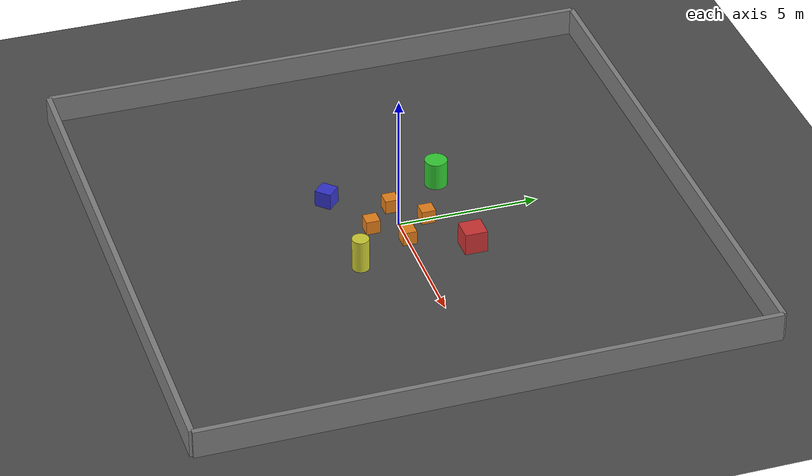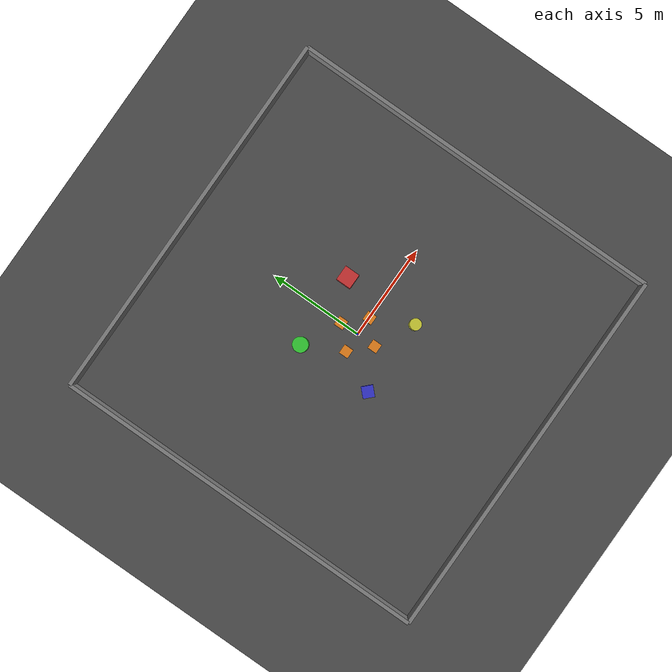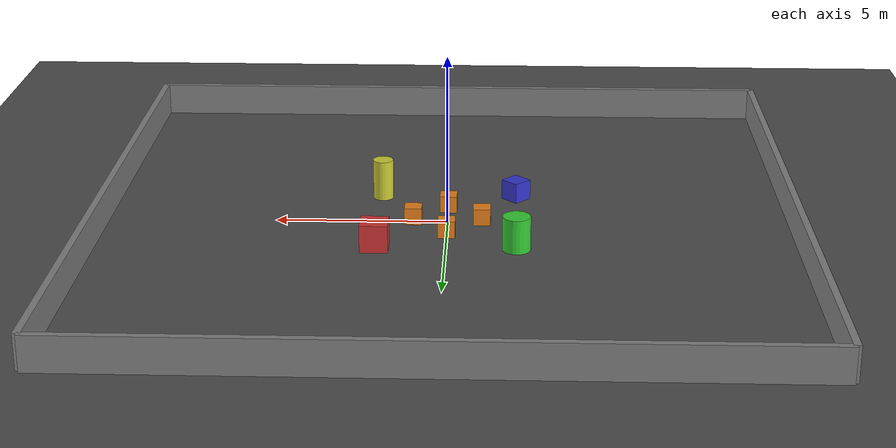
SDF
<?xml version="1.0"?>

<sdf version="1.7">
    <world name="obstacles_easy">
        <!-- Physics settings: 10ms step, 100Hz, real-time (RTF = 1) -->
        <physics name='realtime' type='ignored'>
            <max_step_size>0.01</max_step_size>
            <real_time_factor>1</real_time_factor>
            <real_time_update_rate>100</real_time_update_rate>
        </physics>
        <!-- Faster-than-real-time physics for speeding up training (RTF = 8).
             Comment out the 'realtime' block above and uncomment this to use it. -->

        <!-- Gazebo Harmonic plugins -->
        <plugin name='gz::sim::systems::Physics' filename='gz-sim-physics-system'/>
        <plugin name='gz::sim::systems::UserCommands' filename='gz-sim-user-commands-system'/>
        <plugin name='gz::sim::systems::SceneBroadcaster' filename='gz-sim-scene-broadcaster-system'/>
        <plugin filename='gz-sim-sensors-system' name='gz::sim::systems::Sensors'>
            <render_engine>ogre2</render_engine>
        </plugin>
        <plugin filename="gz-sim-imu-system" name="gz::sim::systems::Imu"/>
        <plugin filename="gz-sim-contact-system" name="gz::sim::systems::Contact"/>

        <scene>
            <ambient>1.0 1.0 1.0</ambient>
            <background>0.8 0.8 0.8</background>
        </scene>

        <!-- Sun -->
        <light type="directional" name="sun">
            <cast_shadows>true</cast_shadows>
            <pose>0 0 10 0 0 0</pose>
            <diffuse>0.8 0.8 0.8 1</diffuse>
            <specular>0.2 0.2 0.2 1</specular>
            <attenuation>
                <range>1000</range>
                <constant>0.9</constant>
                <linear>0.01</linear>
                <quadratic>0.001</quadratic>
            </attenuation>
            <direction>-0.5 0.1 -0.9</direction>
        </light>

        <!-- Ground plane with friction -->
        <model name="ground_plane">
            <static>true</static>
            <link name="link">
                <collision name="collision">
                    <geometry>
                        <plane>
                            <normal>0 0 1</normal>
                            <size>100 100</size>
                        </plane>
                    </geometry>
                    <surface>
                        <friction>
                            <ode>
                                <mu>0.8</mu>
                                <mu2>0.8</mu2>
                            </ode>
                        </friction>
                    </surface>
                </collision>
                <visual name="visual">
                    <geometry>
                        <plane>
                            <normal>0 0 1</normal>
                            <size>100 100</size>
                        </plane>
                    </geometry>
                    <material>
                        <ambient>0.3 0.3 0.3 1</ambient>
                        <diffuse>0.3 0.3 0.3 1</diffuse>
                        <specular>0.1 0.1 0.1 1</specular>
                    </material>
                </visual>
            </link>
        </model>

        <!-- BOUNDARY WALLS (20m x 20m arena) -->

        <!-- North wall -->
        <model name="wall_north">
            <static>true</static>
            <pose>0 10 0.5 0 0 0</pose>
            <link name="link">
                <collision name="collision">
                    <geometry>
                        <box><size>20 0.2 1</size></box>
                    </geometry>
                </collision>
                <visual name="visual">
                    <geometry>
                        <box><size>20 0.2 1</size></box>
                    </geometry>
                    <material>
                        <ambient>0.5 0.5 0.5 1</ambient>
                        <diffuse>0.5 0.5 0.5 1</diffuse>
                    </material>
                </visual>
            </link>
        </model>

        <!-- South wall -->
        <model name="wall_south">
            <static>true</static>
            <pose>0 -10 0.5 0 0 0</pose>
            <link name="link">
                <collision name="collision">
                    <geometry>
                        <box><size>20 0.2 1</size></box>
                    </geometry>
                </collision>
                <visual name="visual">
                    <geometry>
                        <box><size>20 0.2 1</size></box>
                    </geometry>
                    <material>
                        <ambient>0.5 0.5 0.5 1</ambient>
                        <diffuse>0.5 0.5 0.5 1</diffuse>
                    </material>
                </visual>
            </link>
        </model>

        <!-- East wall -->
        <model name="wall_east">
            <static>true</static>
            <pose>10 0 0.5 0 0 0</pose>
            <link name="link">
                <collision name="collision">
                    <geometry>
                        <box><size>0.2 20 1</size></box>
                    </geometry>
                </collision>
                <visual name="visual">
                    <geometry>
                        <box><size>0.2 20 1</size></box>
                    </geometry>
                    <material>
                        <ambient>0.5 0.5 0.5 1</ambient>
                        <diffuse>0.5 0.5 0.5 1</diffuse>
                    </material>
                </visual>
            </link>
        </model>

        <!-- West wall -->
        <model name="wall_west">
            <static>true</static>
            <pose>-10 0 0.5 0 0 0</pose>
            <link name="link">
                <collision name="collision">
                    <geometry>
                        <box><size>0.2 20 1</size></box>
                    </geometry>
                </collision>
                <visual name="visual">
                    <geometry>
                        <box><size>0.2 20 1</size></box>
                    </geometry>
                    <material>
                        <ambient>0.5 0.5 0.5 1</ambient>
                        <diffuse>0.5 0.5 0.5 1</diffuse>
                    </material>
                </visual>
            </link>
        </model>

        <!-- STATIC OBSTACLES (4 varied shapes) -->

        <!-- Static obstacle 1: Large box -->
        <model name="static_box_1">
            <static>true</static>
            <pose>2 2 0.4 0 0 0</pose>
            <link name="link">
                <collision name="collision">
                    <geometry>
                        <box><size>0.8 0.8 0.8</size></box>
                    </geometry>
                </collision>
                <visual name="visual">
                    <geometry>
                        <box><size>0.8 0.8 0.8</size></box>
                    </geometry>
                    <material>
                        <ambient>0.8 0.2 0.2 1</ambient>
                        <diffuse>0.8 0.2 0.2 1</diffuse>
                    </material>
                </visual>
            </link>
        </model>

        <!-- Static obstacle 2: Cylinder -->
        <model name="static_cylinder_1">
            <static>true</static>
            <pose>-2 2 0.5 0 0 0</pose>
            <link name="link">
                <collision name="collision">
                    <geometry>
                        <cylinder>
                            <radius>0.4</radius>
                            <length>1.0</length>
                        </cylinder>
                    </geometry>
                </collision>
                <visual name="visual">
                    <geometry>
                        <cylinder>
                            <radius>0.4</radius>
                            <length>1.0</length>
                        </cylinder>
                    </geometry>
                    <material>
                        <ambient>0.2 0.8 0.2 1</ambient>
                        <diffuse>0.2 0.8 0.2 1</diffuse>
                    </material>
                </visual>
            </link>
        </model>

        <!-- Static obstacle 3: Small box -->
        <model name="static_box_2">
            <static>true</static>
            <pose>-2 -2 0.3 0 0 0.785</pose>
            <link name="link">
                <collision name="collision">
                    <geometry>
                        <box><size>0.6 0.6 0.6</size></box>
                    </geometry>
                </collision>
                <visual name="visual">
                    <geometry>
                        <box><size>0.6 0.6 0.6</size></box>
                    </geometry>
                    <material>
                        <ambient>0.2 0.2 0.8 1</ambient>
                        <diffuse>0.2 0.2 0.8 1</diffuse>
                    </material>
                </visual>
            </link>
        </model>

        <!-- Static obstacle 4: Tall cylinder -->
        <model name="static_cylinder_2">
            <static>true</static>
            <pose>2 -2 0.6 0 0 0</pose>
            <link name="link">
                <collision name="collision">
                    <geometry>
                        <cylinder>
                            <radius>0.3</radius>
                            <length>1.2</length>
                        </cylinder>
                    </geometry>
                </collision>
                <visual name="visual">
                    <geometry>
                        <cylinder>
                            <radius>0.3</radius>
                            <length>1.2</length>
                        </cylinder>
                    </geometry>
                    <material>
                        <ambient>0.8 0.8 0.2 1</ambient>
                        <diffuse>0.8 0.8 0.2 1</diffuse>
                    </material>
                </visual>
            </link>
        </model>

        <!-- MOVABLE OBSTACLES (4 boxes for randomization) -->

        <!-- Movable box 1 -->
        <model name="movable_box_1">
            <static>false</static>
            <pose>1 0 0.25 0 0 0</pose>
            <link name="link">
                <inertial>
                    <mass>5.0</mass>
                    <inertia>
                        <ixx>0.1</ixx><ixy>0</ixy><ixz>0</ixz>
                        <iyy>0.1</iyy><iyz>0</iyz>
                        <izz>0.1</izz>
                    </inertia>
                </inertial>
                <collision name="collision">
                    <geometry>
                        <box><size>0.5 0.5 0.5</size></box>
                    </geometry>
                    <surface>
                        <friction>
                            <ode>
                                <mu>0.8</mu>
                                <mu2>0.8</mu2>
                            </ode>
                        </friction>
                    </surface>
                </collision>
                <visual name="visual">
                    <geometry>
                        <box><size>0.5 0.5 0.5</size></box>
                    </geometry>
                    <material>
                        <ambient>0.9 0.5 0.1 1</ambient>
                        <diffuse>0.9 0.5 0.1 1</diffuse>
                    </material>
                </visual>
            </link>
        </model>

        <!-- Movable box 2 -->
        <model name="movable_box_2">
            <static>false</static>
            <pose>-1 0 0.25 0 0 0</pose>
            <link name="link">
                <inertial>
                    <mass>5.0</mass>
                    <inertia>
                        <ixx>0.1</ixx><ixy>0</ixy><ixz>0</ixz>
                        <iyy>0.1</iyy><iyz>0</iyz>
                        <izz>0.1</izz>
                    </inertia>
                </inertial>
                <collision name="collision">
                    <geometry>
                        <box><size>0.5 0.5 0.5</size></box>
                    </geometry>
                    <surface>
                        <friction>
                            <ode>
                                <mu>0.8</mu>
                                <mu2>0.8</mu2>
                            </ode>
                        </friction>
                    </surface>
                </collision>
                <visual name="visual">
                    <geometry>
                        <box><size>0.5 0.5 0.5</size></box>
                    </geometry>
                    <material>
                        <ambient>0.9 0.5 0.1 1</ambient>
                        <diffuse>0.9 0.5 0.1 1</diffuse>
                    </material>
                </visual>
            </link>
        </model>

        <!-- Movable box 3 -->
        <model name="movable_box_3">
            <static>false</static>
            <pose>0 1 0.25 0 0 0</pose>
            <link name="link">
                <inertial>
                    <mass>5.0</mass>
                    <inertia>
                        <ixx>0.1</ixx><ixy>0</ixy><ixz>0</ixz>
                        <iyy>0.1</iyy><iyz>0</iyz>
                        <izz>0.1</izz>
                    </inertia>
                </inertial>
                <collision name="collision">
                    <geometry>
                        <box><size>0.5 0.5 0.5</size></box>
                    </geometry>
                    <surface>
                        <friction>
                            <ode>
                                <mu>0.8</mu>
                                <mu2>0.8</mu2>
                            </ode>
                        </friction>
                    </surface>
                </collision>
                <visual name="visual">
                    <geometry>
                        <box><size>0.5 0.5 0.5</size></box>
                    </geometry>
                    <material>
                        <ambient>0.9 0.5 0.1 1</ambient>
                        <diffuse>0.9 0.5 0.1 1</diffuse>
                    </material>
                </visual>
            </link>
        </model>

        <!-- Movable box 4 -->
        <model name="movable_box_4">
            <static>false</static>
            <pose>0 -1 0.25 0 0 0</pose>
            <link name="link">
                <inertial>
                    <mass>5.0</mass>
                    <inertia>
                        <ixx>0.1</ixx><ixy>0</ixy><ixz>0</ixz>
                        <iyy>0.1</iyy><iyz>0</iyz>
                        <izz>0.1</izz>
                    </inertia>
                </inertial>
                <collision name="collision">
                    <geometry>
                        <box><size>0.5 0.5 0.5</size></box>
                    </geometry>
                    <surface>
                        <friction>
                            <ode>
                                <mu>0.8</mu>
                                <mu2>0.8</mu2>
                            </ode>
                        </friction>
                    </surface>
                </collision>
                <visual name="visual">
                    <geometry>
                        <box><size>0.5 0.5 0.5</size></box>
                    </geometry>
                    <material>
                        <ambient>0.9 0.5 0.1 1</ambient>
                        <diffuse>0.9 0.5 0.1 1</diffuse>
                    </material>
                </visual>
            </link>
        </model>

    </world>
</sdf>
